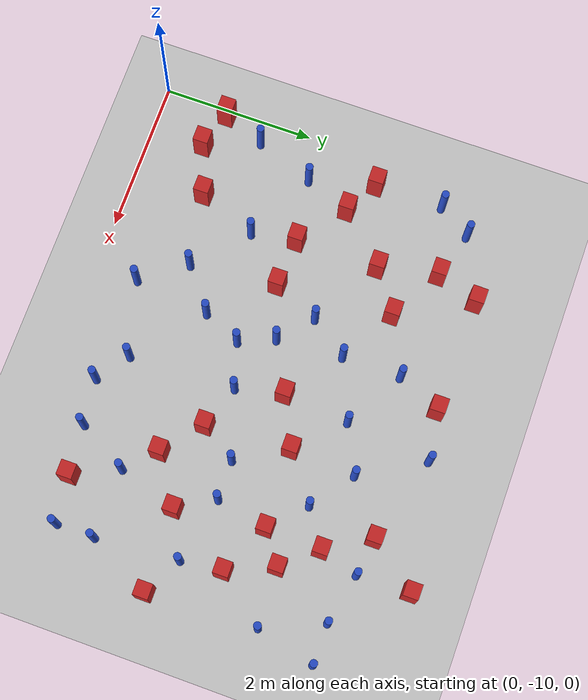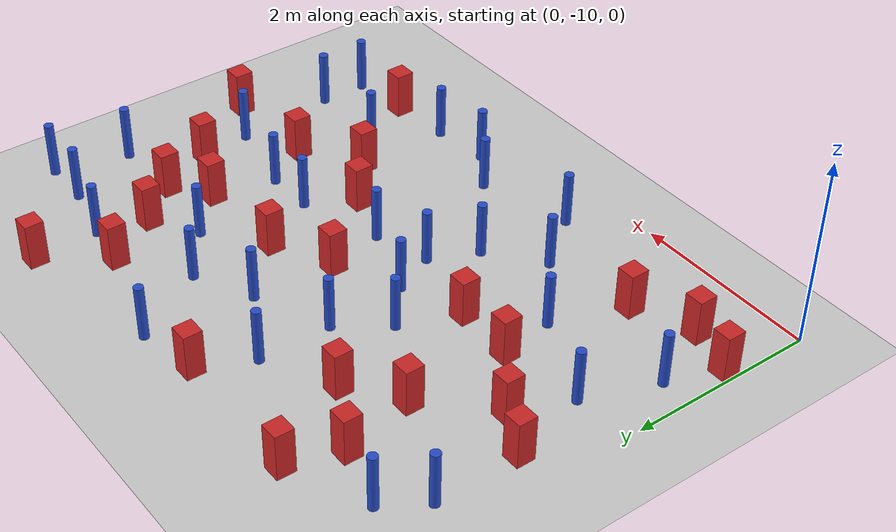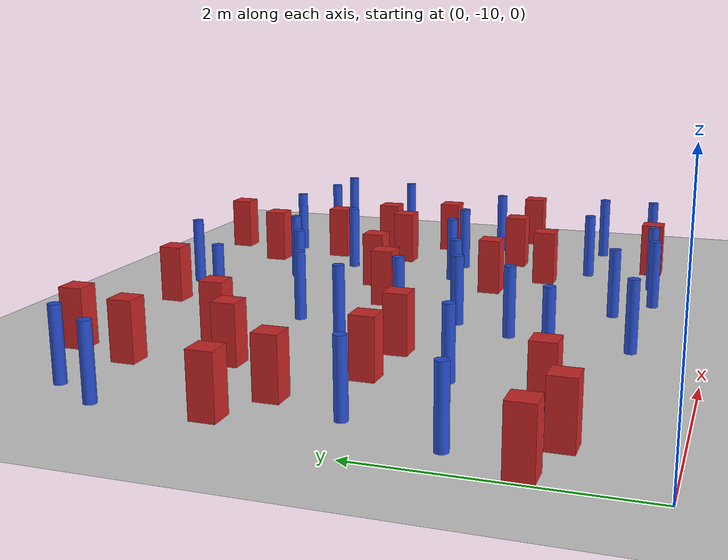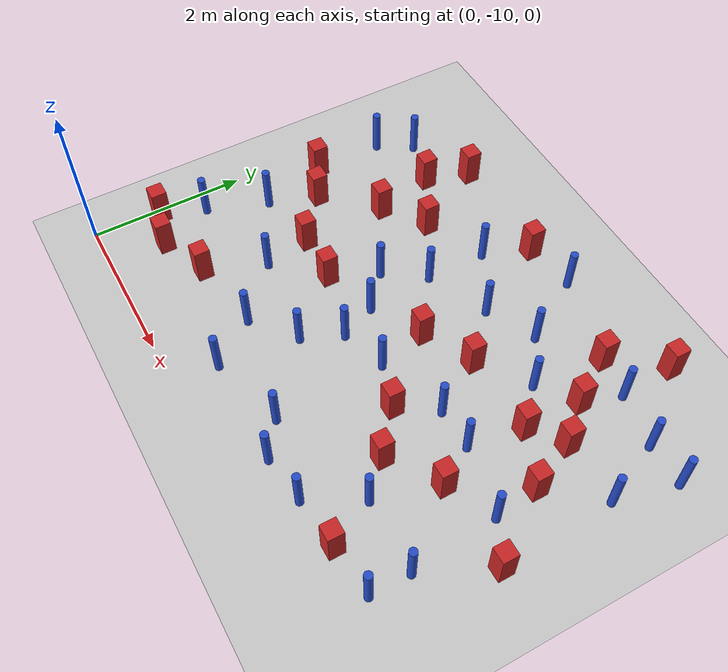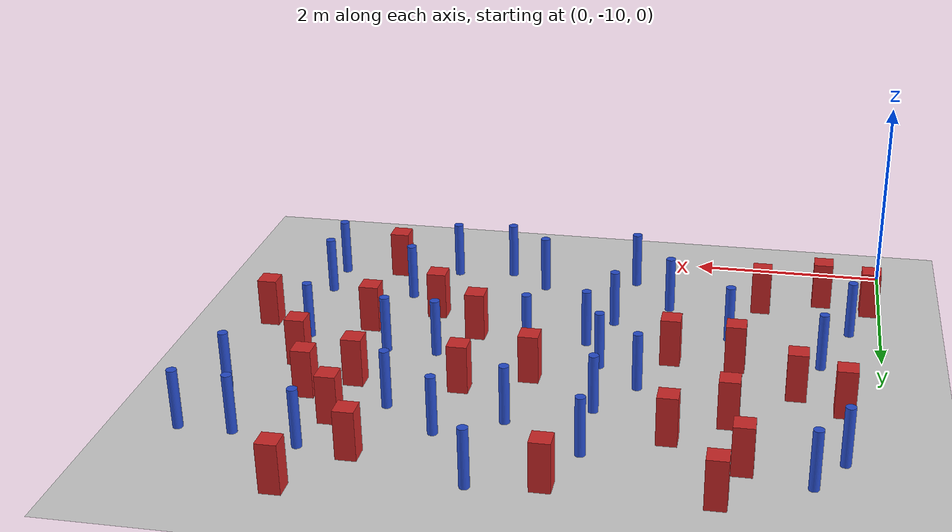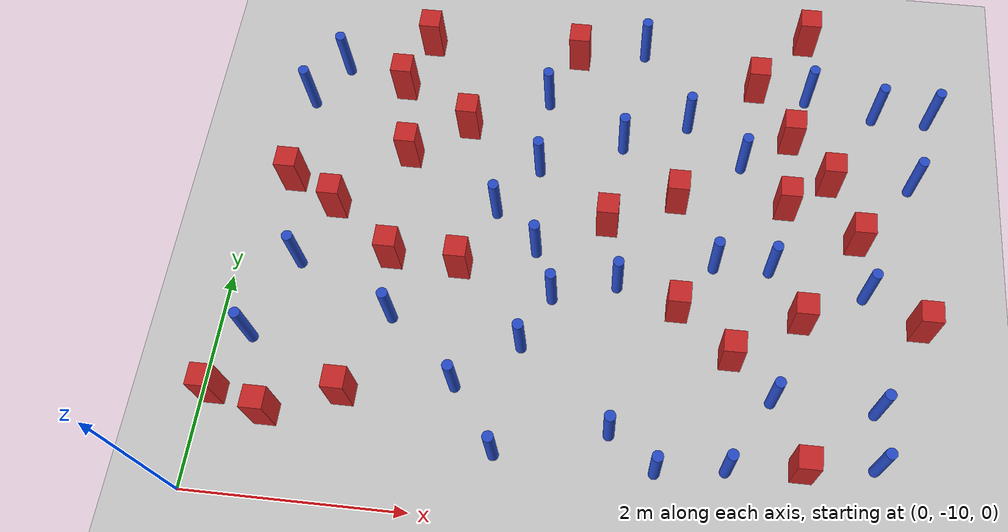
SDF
<sdf version="1.6">
 <world name="default">
  <model name="ground_plane">
   <static>1</static>
   <link name="link">
    <collision name="collision">
     <geometry><plane><normal>0 0 1</normal><size>100 100</size></plane></geometry>
     <surface><friction><ode><mu>100</mu><mu2>50</mu2></ode></friction></surface>
    </collision>
    <visual name="visual">
     <cast_shadows>0</cast_shadows>
     <geometry><plane><normal>0 0 1</normal><size>100 100</size></plane></geometry>
     <material>
      <ambient>1.0 1.0 1.0 1.0</ambient>
      <diffuse>0.8 0.8 0.8 1.0</diffuse>
      <specular>0.01 0.01 0.01 1.000000</specular>
     </material>
    </visual>
   </link>
  </model>
  <model name="pole_obstacle4">
   <static>true</static>
   <pose>5.01785423754 -8.72050945482 -3.09024884793e-07 -7.19054271912e-07 -2.1131507513e-07 -1.93935509261e-07</pose>
   <link name="link">
    <pose>0 0 0.3 0 -0 0</pose>
    <inertial>
     <mass>1</mass>
     <inertia><ixx>0.145833</ixx><ixy>0</ixy><ixz>0</ixz><iyy>0.145833</iyy><iyz>0</iyz><izz>0.125</izz></inertia>
    </inertial>
    <collision name="collision">
     <geometry><cylinder><radius>0.05</radius><length>.6</length></cylinder></geometry>
    </collision>
    <visual name="visual">
     <geometry><cylinder><radius>0.05</radius><length>.6</length></cylinder></geometry>
     <material>
      <script><name>Gazebo/Blue</name><uri>file://media/materials/scripts/gazebo.material</uri></script>
     </material>
    </visual>
   </link>
  </model>
  <model name="square_post_obstacle10">
   <static>true</static>
   <pose>3.42457370579 -7.12895520074 -4.36207812815e-07 3.75137919937e-06 9.77721102514e-07 2.47381364184e-05</pose>
   <link name="link">
    <pose>0 0 0.25 0 -0 0</pose>
    <inertial>
     <mass>100</mass>
     <inertia>
      <ixx>0.166667</ixx>
      <ixy>0</ixy>
      <ixz>0</ixz>
      <iyy>0.166667</iyy>
      <iyz>0</iyz>
      <izz>0.166667</izz>
     </inertia>
    </inertial>
    <collision name="collision"><geometry><box><size>.2 .2 .5</size></box></geometry></collision>
    <visual name="visual">
     <geometry><box><size>.2 .2 .5</size></box></geometry>
     <material>
      <script><name>Gazebo/Red</name><uri>file://media/materials/scripts/gazebo.material</uri></script>
     </material>
    </visual>
   </link>
  </model>
  <model name="square_post_obstacle11">
   <static>true</static>
   <pose>1.97547546492 -6.18665159734 -4.36207812815e-07 3.75137919937e-06 9.77721102514e-07 2.47381364184e-05</pose>
   <link name="link">
    <pose>0 0 0.25 0 -0 0</pose>
    <inertial>
     <mass>100</mass>
     <inertia>
      <ixx>0.166667</ixx>
      <ixy>0</ixy>
      <ixz>0</ixz>
      <iyy>0.166667</iyy>
      <iyz>0</iyz>
      <izz>0.166667</izz>
     </inertia>
    </inertial>
    <collision name="collision"><geometry><box><size>.2 .2 .5</size></box></geometry></collision>
    <visual name="visual">
     <geometry><box><size>.2 .2 .5</size></box></geometry>
     <material>
      <script><name>Gazebo/Red</name><uri>file://media/materials/scripts/gazebo.material</uri></script>
     </material>
    </visual>
   </link>
  </model>
  <model name="square_post_obstacle15">
   <static>true</static>
   <pose>5.29516359935 -9.3053907383 -4.36207812815e-07 3.75137919937e-06 9.77721102514e-07 2.47381364184e-05</pose>
   <link name="link">
    <pose>0 0 0.25 0 -0 0</pose>
    <inertial>
     <mass>100</mass>
     <inertia>
      <ixx>0.166667</ixx>
      <ixy>0</ixy>
      <ixz>0</ixz>
      <iyy>0.166667</iyy>
      <iyz>0</iyz>
      <izz>0.166667</izz>
     </inertia>
    </inertial>
    <collision name="collision"><geometry><box><size>.2 .2 .5</size></box></geometry></collision>
    <visual name="visual">
     <geometry><box><size>.2 .2 .5</size></box></geometry>
     <material>
      <script><name>Gazebo/Red</name><uri>file://media/materials/scripts/gazebo.material</uri></script>
     </material>
    </visual>
   </link>
  </model>
  <model name="square_post_obstacle17">
   <static>true</static>
   <pose>0.836642216668 -7.19141728706 -4.36207812815e-07 3.75137919937e-06 9.77721102514e-07 2.47381364184e-05</pose>
   <link name="link">
    <pose>0 0 0.25 0 -0 0</pose>
    <inertial>
     <mass>100</mass>
     <inertia>
      <ixx>0.166667</ixx>
      <ixy>0</ixy>
      <ixz>0</ixz>
      <iyy>0.166667</iyy>
      <iyz>0</iyz>
      <izz>0.166667</izz>
     </inertia>
    </inertial>
    <collision name="collision"><geometry><box><size>.2 .2 .5</size></box></geometry></collision>
    <visual name="visual">
     <geometry><box><size>.2 .2 .5</size></box></geometry>
     <material>
      <script><name>Gazebo/Red</name><uri>file://media/materials/scripts/gazebo.material</uri></script>
     </material>
    </visual>
   </link>
  </model>
  <model name="square_post_obstacle20">
   <static>true</static>
   <pose>1.25655331617 -9.02356234698 -4.36207812815e-07 3.75137919937e-06 9.77721102514e-07 2.47381364184e-05</pose>
   <link name="link">
    <pose>0 0 0.25 0 -0 0</pose>
    <inertial>
     <mass>100</mass>
     <inertia>
      <ixx>0.166667</ixx>
      <ixy>0</ixy>
      <ixz>0</ixz>
      <iyy>0.166667</iyy>
      <iyz>0</iyz>
      <izz>0.166667</izz>
     </inertia>
    </inertial>
    <collision name="collision"><geometry><box><size>.2 .2 .5</size></box></geometry></collision>
    <visual name="visual">
     <geometry><box><size>.2 .2 .5</size></box></geometry>
     <material>
      <script><name>Gazebo/Red</name><uri>file://media/materials/scripts/gazebo.material</uri></script>
     </material>
    </visual>
   </link>
  </model>
  <model name="pole_obstacle12">
   <static>true</static>
   <pose>4.45089515591 -7.46767784374 -3.09024884793e-07 -7.19054271911e-07 -2.1131507516e-07 -1.93935509277e-07</pose>
   <link name="link">
    <pose>0 0 0.3 0 -0 0</pose>
    <inertial>
     <mass>1</mass>
     <inertia><ixx>0.145833</ixx><ixy>0</ixy><ixz>0</ixz><iyy>0.145833</iyy><iyz>0</iyz><izz>0.125</izz></inertia>
    </inertial>
    <collision name="collision">
     <geometry><cylinder><radius>0.05</radius><length>.6</length></cylinder></geometry>
    </collision>
    <visual name="visual">
     <geometry><cylinder><radius>0.05</radius><length>.6</length></cylinder></geometry>
     <material>
      <script><name>Gazebo/Blue</name><uri>file://media/materials/scripts/gazebo.material</uri></script>
     </material>
    </visual>
   </link>
  </model>
  <model name="pole_obstacle17">
   <static>true</static>
   <pose>5.27630663382 -5.53647277275 -3.09024884793e-07 -7.19054271911e-07 -2.1131507516e-07 -1.93935509277e-07</pose>
   <link name="link">
    <pose>0 0 0.3 0 -0 0</pose>
    <inertial>
     <mass>1</mass>
     <inertia><ixx>0.145833</ixx><ixy>0</ixy><ixz>0</ixz><iyy>0.145833</iyy><iyz>0</iyz><izz>0.125</izz></inertia>
    </inertial>
    <collision name="collision">
     <geometry><cylinder><radius>0.05</radius><length>.6</length></cylinder></geometry>
    </collision>
    <visual name="visual">
     <geometry><cylinder><radius>0.05</radius><length>.6</length></cylinder></geometry>
     <material>
      <script><name>Gazebo/Blue</name><uri>file://media/materials/scripts/gazebo.material</uri></script>
     </material>
    </visual>
   </link>
  </model>
  <model name="pole_obstacle27">
   <static>true</static>
   <pose>5.92915076651 -9.23569635779 -3.09024884793e-07 -7.19054271912e-07 -2.1131507513e-07 -1.93935509261e-07</pose>
   <link name="link">
    <pose>0 0 0.3 0 -0 0</pose>
    <inertial>
     <mass>1</mass>
     <inertia><ixx>0.145833</ixx><ixy>0</ixy><ixz>0</ixz><iyy>0.145833</iyy><iyz>0</iyz><izz>0.125</izz></inertia>
    </inertial>
    <collision name="collision">
     <geometry><cylinder><radius>0.05</radius><length>.6</length></cylinder></geometry>
    </collision>
    <visual name="visual">
     <geometry><cylinder><radius>0.05</radius><length>.6</length></cylinder></geometry>
     <material>
      <script><name>Gazebo/Blue</name><uri>file://media/materials/scripts/gazebo.material</uri></script>
     </material>
    </visual>
   </link>
  </model>
  <model name="square_post_obstacle32">
   <static>true</static>
   <pose>5.09610575407 -6.78287117892 -4.36207812815e-07 3.75137919937e-06 9.77721102514e-07 2.47381364184e-05</pose>
   <link name="link">
    <pose>0 0 0.25 0 -0 0</pose>
    <inertial>
     <mass>100</mass>
     <inertia>
      <ixx>0.166667</ixx>
      <ixy>0</ixy>
      <ixz>0</ixz>
      <iyy>0.166667</iyy>
      <iyz>0</iyz>
      <izz>0.166667</izz>
     </inertia>
    </inertial>
    <collision name="collision"><geometry><box><size>.2 .2 .5</size></box></geometry></collision>
    <visual name="visual">
     <geometry><box><size>.2 .2 .5</size></box></geometry>
     <material>
      <script><name>Gazebo/Red</name><uri>file://media/materials/scripts/gazebo.material</uri></script>
     </material>
    </visual>
   </link>
  </model>
  <model name="square_post_obstacle34">
   <static>true</static>
   <pose>1.46215162454 -5.23449316191 -4.36207812815e-07 3.75137919937e-06 9.77721102514e-07 2.47381364184e-05</pose>
   <link name="link">
    <pose>0 0 0.25 0 -0 0</pose>
    <inertial>
     <mass>100</mass>
     <inertia>
      <ixx>0.166667</ixx>
      <ixy>0</ixy>
      <ixz>0</ixz>
      <iyy>0.166667</iyy>
      <iyz>0</iyz>
      <izz>0.166667</izz>
     </inertia>
    </inertial>
    <collision name="collision"><geometry><box><size>.2 .2 .5</size></box></geometry></collision>
    <visual name="visual">
     <geometry><box><size>.2 .2 .5</size></box></geometry>
     <material>
      <script><name>Gazebo/Red</name><uri>file://media/materials/scripts/gazebo.material</uri></script>
     </material>
    </visual>
   </link>
  </model>
  <model name="pole_obstacle32">
   <static>true</static>
   <pose>5.93298519884 -8.73451399179 -3.09024884793e-07 -7.19054271912e-07 -2.1131507513e-07 -1.93935509261e-07</pose>
   <link name="link">
    <pose>0 0 0.3 0 -0 0</pose>
    <inertial>
     <mass>1</mass>
     <inertia><ixx>0.145833</ixx><ixy>0</ixy><ixz>0</ixz><iyy>0.145833</iyy><iyz>0</iyz><izz>0.125</izz></inertia>
    </inertial>
    <collision name="collision">
     <geometry><cylinder><radius>0.05</radius><length>.6</length></cylinder></geometry>
    </collision>
    <visual name="visual">
     <geometry><cylinder><radius>0.05</radius><length>.6</length></cylinder></geometry>
     <material>
      <script><name>Gazebo/Blue</name><uri>file://media/materials/scripts/gazebo.material</uri></script>
     </material>
    </visual>
   </link>
  </model>
  <model name="pole_obstacle41">
   <static>true</static>
   <pose>4.96928297013 -7.45703240498 -3.09024884793e-07 -7.19054271911e-07 -2.1131507516e-07 -1.93935509277e-07</pose>
   <link name="link">
    <pose>0 0 0.3 0 -0 0</pose>
    <inertial>
     <mass>1</mass>
     <inertia><ixx>0.145833</ixx><ixy>0</ixy><ixz>0</ixz><iyy>0.145833</iyy><iyz>0</iyz><izz>0.125</izz></inertia>
    </inertial>
    <collision name="collision">
     <geometry><cylinder><radius>0.05</radius><length>.6</length></cylinder></geometry>
    </collision>
    <visual name="visual">
     <geometry><cylinder><radius>0.05</radius><length>.6</length></cylinder></geometry>
     <material>
      <script><name>Gazebo/Blue</name><uri>file://media/materials/scripts/gazebo.material</uri></script>
     </material>
    </visual>
   </link>
  </model>
  <model name="pole_obstacle44">
   <static>true</static>
   <pose>0.605378490308 -7.80299524421 -3.09024884793e-07 -7.19054271912e-07 -2.11315075129e-07 -1.93935509261e-07</pose>
   <link name="link">
    <pose>0 0 0.3 0 -0 0</pose>
    <inertial>
     <mass>1</mass>
     <inertia><ixx>0.145833</ixx><ixy>0</ixy><ixz>0</ixz><iyy>0.145833</iyy><iyz>0</iyz><izz>0.125</izz></inertia>
    </inertial>
    <collision name="collision">
     <geometry><cylinder><radius>0.05</radius><length>.6</length></cylinder></geometry>
    </collision>
    <visual name="visual">
     <geometry><cylinder><radius>0.05</radius><length>.6</length></cylinder></geometry>
     <material>
      <script><name>Gazebo/Blue</name><uri>file://media/materials/scripts/gazebo.material</uri></script>
     </material>
    </visual>
   </link>
  </model>
  <model name="square_post_obstacle43">
   <static>true</static>
   <pose>5.11999814924 -6.04693114205 -4.36207812815e-07 3.75137919937e-06 9.77721102514e-07 2.47381364184e-05</pose>
   <link name="link">
    <pose>0 0 0.25 0 -0 0</pose>
    <inertial>
     <mass>100</mass>
     <inertia>
      <ixx>0.166667</ixx>
      <ixy>0</ixy>
      <ixz>0</ixz>
      <iyy>0.166667</iyy>
      <iyz>0</iyz>
      <izz>0.166667</izz>
     </inertia>
    </inertial>
    <collision name="collision"><geometry><box><size>.2 .2 .5</size></box></geometry></collision>
    <visual name="visual">
     <geometry><box><size>.2 .2 .5</size></box></geometry>
     <material>
      <script><name>Gazebo/Red</name><uri>file://media/materials/scripts/gazebo.material</uri></script>
     </material>
    </visual>
   </link>
  </model>
  <model name="square_post_obstacle55">
   <static>true</static>
   <pose>0.114813688964 -9.12235032195 -4.36207812815e-07 3.75137919937e-06 9.77721102514e-07 2.47381364184e-05</pose>
   <link name="link">
    <pose>0 0 0.25 0 -0 0</pose>
    <inertial>
     <mass>100</mass>
     <inertia>
      <ixx>0.166667</ixx>
      <ixy>0</ixy>
      <ixz>0</ixz>
      <iyy>0.166667</iyy>
      <iyz>0</iyz>
      <izz>0.166667</izz>
     </inertia>
    </inertial>
    <collision name="collision"><geometry><box><size>.2 .2 .5</size></box></geometry></collision>
    <visual name="visual">
     <geometry><box><size>.2 .2 .5</size></box></geometry>
     <material>
      <script><name>Gazebo/Red</name><uri>file://media/materials/scripts/gazebo.material</uri></script>
     </material>
    </visual>
   </link>
  </model>
  <model name="square_post_obstacle65">
   <static>true</static>
   <pose>2.97142515499 -5.25518997697 -4.36207812815e-07 3.75137919937e-06 9.77721102514e-07 2.47381364184e-05</pose>
   <link name="link">
    <pose>0 0 0.25 0 -0 0</pose>
    <inertial>
     <mass>100</mass>
     <inertia>
      <ixx>0.166667</ixx>
      <ixy>0</ixy>
      <ixz>0</ixz>
      <iyy>0.166667</iyy>
      <iyz>0</iyz>
      <izz>0.166667</izz>
     </inertia>
    </inertial>
    <collision name="collision"><geometry><box><size>.2 .2 .5</size></box></geometry></collision>
    <visual name="visual">
     <geometry><box><size>.2 .2 .5</size></box></geometry>
     <material>
      <script><name>Gazebo/Red</name><uri>file://media/materials/scripts/gazebo.material</uri></script>
     </material>
    </visual>
   </link>
  </model>
  <model name="square_post_obstacle66">
   <static>true</static>
   <pose>1.27184944069 -5.79322923399 -4.36207812815e-07 3.75137919937e-06 9.77721102514e-07 2.47381364184e-05</pose>
   <link name="link">
    <pose>0 0 0.25 0 -0 0</pose>
    <inertial>
     <mass>100</mass>
     <inertia>
      <ixx>0.166667</ixx>
      <ixy>0</ixy>
      <ixz>0</ixz>
      <iyy>0.166667</iyy>
      <iyz>0</iyz>
      <izz>0.166667</izz>
     </inertia>
    </inertial>
    <collision name="collision"><geometry><box><size>.2 .2 .5</size></box></geometry></collision>
    <visual name="visual">
     <geometry><box><size>.2 .2 .5</size></box></geometry>
     <material>
      <script><name>Gazebo/Red</name><uri>file://media/materials/scripts/gazebo.material</uri></script>
     </material>
    </visual>
   </link>
  </model>
  <model name="pole_obstacle65">
   <static>true</static>
   <pose>2.78615547241 -7.47145394269 -3.09024884793e-07 -7.19054271912e-07 -2.11315075134e-07 -1.93935509266e-07</pose>
   <link name="link">
    <pose>0 0 0.3 0 -0 0</pose>
    <inertial>
     <mass>1</mass>
     <inertia><ixx>0.145833</ixx><ixy>0</ixy><ixz>0</ixz><iyy>0.145833</iyy><iyz>0</iyz><izz>0.125</izz></inertia>
    </inertial>
    <collision name="collision">
     <geometry><cylinder><radius>0.05</radius><length>.6</length></cylinder></geometry>
    </collision>
    <visual name="visual">
     <geometry><cylinder><radius>0.05</radius><length>.6</length></cylinder></geometry>
     <material>
      <script><name>Gazebo/Blue</name><uri>file://media/materials/scripts/gazebo.material</uri></script>
     </material>
    </visual>
   </link>
  </model>
  <model name="square_post_obstacle71">
   <static>true</static>
   <pose>2.09841490123 -7.70209737423 -4.36207812815e-07 3.75137919937e-06 9.77721102514e-07 2.47381364184e-05</pose>
   <link name="link">
    <pose>0 0 0.25 0 -0 0</pose>
    <inertial>
     <mass>100</mass>
     <inertia>
      <ixx>0.166667</ixx>
      <ixy>0</ixy>
      <ixz>0</ixz>
      <iyy>0.166667</iyy>
      <iyz>0</iyz>
      <izz>0.166667</izz>
     </inertia>
    </inertial>
    <collision name="collision"><geometry><box><size>.2 .2 .5</size></box></geometry></collision>
    <visual name="visual">
     <geometry><box><size>.2 .2 .5</size></box></geometry>
     <material>
      <script><name>Gazebo/Red</name><uri>file://media/materials/scripts/gazebo.material</uri></script>
     </material>
    </visual>
   </link>
  </model>
  <model name="pole_obstacle70">
   <static>true</static>
   <pose>6.4743793026 -5.68180323685 -3.09024884793e-07 -7.19054271911e-07 -2.1131507516e-07 -1.93935509277e-07</pose>
   <link name="link">
    <pose>0 0 0.3 0 -0 0</pose>
    <inertial>
     <mass>1</mass>
     <inertia><ixx>0.145833</ixx><ixy>0</ixy><ixz>0</ixz><iyy>0.145833</iyy><iyz>0</iyz><izz>0.125</izz></inertia>
    </inertial>
    <collision name="collision">
     <geometry><cylinder><radius>0.05</radius><length>.6</length></cylinder></geometry>
    </collision>
    <visual name="visual">
     <geometry><cylinder><radius>0.05</radius><length>.6</length></cylinder></geometry>
     <material>
      <script><name>Gazebo/Blue</name><uri>file://media/materials/scripts/gazebo.material</uri></script>
     </material>
    </visual>
   </link>
  </model>
  <model name="pole_obstacle71">
   <static>true</static>
   <pose>3.62967392677 -5.14205303687 -3.09024884793e-07 -7.19054271912e-07 -2.11315075134e-07 -1.93935509266e-07</pose>
   <link name="link">
    <pose>0 0 0.3 0 -0 0</pose>
    <inertial>
     <mass>1</mass>
     <inertia><ixx>0.145833</ixx><ixy>0</ixy><ixz>0</ixz><iyy>0.145833</iyy><iyz>0</iyz><izz>0.125</izz></inertia>
    </inertial>
    <collision name="collision">
     <geometry><cylinder><radius>0.05</radius><length>.6</length></cylinder></geometry>
    </collision>
    <visual name="visual">
     <geometry><cylinder><radius>0.05</radius><length>.6</length></cylinder></geometry>
     <material>
      <script><name>Gazebo/Blue</name><uri>file://media/materials/scripts/gazebo.material</uri></script>
     </material>
    </visual>
   </link>
  </model>
  <model name="pole_obstacle85">
   <static>true</static>
   <pose>2.72221919034 -5.82323684712 -3.09024884793e-07 -7.19054271912e-07 -2.11315075134e-07 -1.93935509266e-07</pose>
   <link name="link">
    <pose>0 0 0.3 0 -0 0</pose>
    <inertial>
     <mass>1</mass>
     <inertia><ixx>0.145833</ixx><ixy>0</ixy><ixz>0</ixz><iyy>0.145833</iyy><iyz>0</iyz><izz>0.125</izz></inertia>
    </inertial>
    <collision name="collision">
     <geometry><cylinder><radius>0.05</radius><length>.6</length></cylinder></geometry>
    </collision>
    <visual name="visual">
     <geometry><cylinder><radius>0.05</radius><length>.6</length></cylinder></geometry>
     <material>
      <script><name>Gazebo/Blue</name><uri>file://media/materials/scripts/gazebo.material</uri></script>
     </material>
    </visual>
   </link>
  </model>
  <model name="pole_obstacle87">
   <static>true</static>
   <pose>3.50118330531 -6.26173031369 -3.09024884793e-07 -7.19054271912e-07 -2.11315075134e-07 -1.93935509266e-07</pose>
   <link name="link">
    <pose>0 0 0.3 0 -0 0</pose>
    <inertial>
     <mass>1</mass>
     <inertia><ixx>0.145833</ixx><ixy>0</ixy><ixz>0</ixz><iyy>0.145833</iyy><iyz>0</iyz><izz>0.125</izz></inertia>
    </inertial>
    <collision name="collision">
     <geometry><cylinder><radius>0.05</radius><length>.6</length></cylinder></geometry>
    </collision>
    <visual name="visual">
     <geometry><cylinder><radius>0.05</radius><length>.6</length></cylinder></geometry>
     <material>
      <script><name>Gazebo/Blue</name><uri>file://media/materials/scripts/gazebo.material</uri></script>
     </material>
    </visual>
   </link>
  </model>
  <model name="pole_obstacle97">
   <static>true</static>
   <pose>0.370575836053 -6.04234179367 -3.09024884793e-07 -7.19054271912e-07 -2.1131507513e-07 -1.93935509262e-07</pose>
   <link name="link">
    <pose>0 0 0.3 0 -0 0</pose>
    <inertial>
     <mass>1</mass>
     <inertia><ixx>0.145833</ixx><ixy>0</ixy><ixz>0</ixz><iyy>0.145833</iyy><iyz>0</iyz><izz>0.125</izz></inertia>
    </inertial>
    <collision name="collision">
     <geometry><cylinder><radius>0.05</radius><length>.6</length></cylinder></geometry>
    </collision>
    <visual name="visual">
     <geometry><cylinder><radius>0.05</radius><length>.6</length></cylinder></geometry>
     <material>
      <script><name>Gazebo/Blue</name><uri>file://media/materials/scripts/gazebo.material</uri></script>
     </material>
    </visual>
   </link>
  </model>
  <model name="pole_obstacle106">
   <static>true</static>
   <pose>2.76178451699 -8.42981464068 -3.09024884848e-07 -7.19054271902e-07 -2.11315075199e-07 -1.93935509286e-07</pose>
   <link name="link">
    <pose>0 0 0.3 0 -0 0</pose>
    <inertial>
     <mass>1</mass>
     <inertia><ixx>0.145833</ixx><ixy>0</ixy><ixz>0</ixz><iyy>0.145833</iyy><iyz>0</iyz><izz>0.125</izz></inertia>
    </inertial>
    <collision name="collision">
     <geometry><cylinder><radius>0.05</radius><length>.6</length></cylinder></geometry>
    </collision>
    <visual name="visual">
     <geometry><cylinder><radius>0.05</radius><length>.6</length></cylinder></geometry>
     <material>
      <script><name>Gazebo/Blue</name><uri>file://media/materials/scripts/gazebo.material</uri></script>
     </material>
    </visual>
   </link>
  </model>
  <model name="square_post_obstacle110">
   <static>true</static>
   <pose>5.25754449589 -7.93784602561 -4.36207812815e-07 3.75137919937e-06 9.77721102514e-07 2.47381364184e-05</pose>
   <link name="link">
    <pose>0 0 0.25 0 -0 0</pose>
    <inertial>
     <mass>100</mass>
     <inertia>
      <ixx>0.166667</ixx>
      <ixy>0</ixy>
      <ixz>0</ixz>
      <iyy>0.166667</iyy>
      <iyz>0</iyz>
      <izz>0.166667</izz>
     </inertia>
    </inertial>
    <collision name="collision"><geometry><box><size>.2 .2 .5</size></box></geometry></collision>
    <visual name="visual">
     <geometry><box><size>.2 .2 .5</size></box></geometry>
     <material>
      <script><name>Gazebo/Red</name><uri>file://media/materials/scripts/gazebo.material</uri></script>
     </material>
    </visual>
   </link>
  </model>
  <model name="pole_obstacle124">
   <static>true</static>
   <pose>4.11734787422 -5.95949011929 -3.09024884793e-07 -7.19054271911e-07 -2.1131507516e-07 -1.93935509277e-07</pose>
   <link name="link">
    <pose>0 0 0.3 0 -0 0</pose>
    <inertial>
     <mass>1</mass>
     <inertia><ixx>0.145833</ixx><ixy>0</ixy><ixz>0</ixz><iyy>0.145833</iyy><iyz>0</iyz><izz>0.125</izz></inertia>
    </inertial>
    <collision name="collision">
     <geometry><cylinder><radius>0.05</radius><length>.6</length></cylinder></geometry>
    </collision>
    <visual name="visual">
     <geometry><cylinder><radius>0.05</radius><length>.6</length></cylinder></geometry>
     <material>
      <script><name>Gazebo/Blue</name><uri>file://media/materials/scripts/gazebo.material</uri></script>
     </material>
    </visual>
   </link>
  </model>
  <model name="pole_obstacle127">
   <static>true</static>
   <pose>4.04201682928 -9.4518366179 -3.09024884793e-07 -7.19054271912e-07 -2.11315075133e-07 -1.93935509264e-07</pose>
   <link name="link">
    <pose>0 0 0.3 0 -0 0</pose>
    <inertial>
     <mass>1</mass>
     <inertia><ixx>0.145833</ixx><ixy>0</ixy><ixz>0</ixz><iyy>0.145833</iyy><iyz>0</iyz><izz>0.125</izz></inertia>
    </inertial>
    <collision name="collision">
     <geometry><cylinder><radius>0.05</radius><length>.6</length></cylinder></geometry>
    </collision>
    <visual name="visual">
     <geometry><cylinder><radius>0.05</radius><length>.6</length></cylinder></geometry>
     <material>
      <script><name>Gazebo/Blue</name><uri>file://media/materials/scripts/gazebo.material</uri></script>
     </material>
    </visual>
   </link>
  </model>
  <model name="square_post_obstacle114">
   <static>true</static>
   <pose>0.615794236961 -9.26849853344 -4.36207812815e-07 3.75137919937e-06 9.77721102514e-07 2.47381364184e-05</pose>
   <link name="link">
    <pose>0 0 0.25 0 -0 0</pose>
    <inertial>
     <mass>100</mass>
     <inertia>
      <ixx>0.166667</ixx>
      <ixy>0</ixy>
      <ixz>0</ixz>
      <iyy>0.166667</iyy>
      <iyz>0</iyz>
      <izz>0.166667</izz>
     </inertia>
    </inertial>
    <collision name="collision"><geometry><box><size>.2 .2 .5</size></box></geometry></collision>
    <visual name="visual">
     <geometry><box><size>.2 .2 .5</size></box></geometry>
     <material>
      <script><name>Gazebo/Red</name><uri>file://media/materials/scripts/gazebo.material</uri></script>
     </material>
    </visual>
   </link>
  </model>
  <model name="square_post_obstacle119">
   <static>true</static>
   <pose>4.64056442495 -8.35313244497 -4.36207812815e-07 3.75137919937e-06 9.77721102514e-07 2.47381364184e-05</pose>
   <link name="link">
    <pose>0 0 0.25 0 -0 0</pose>
    <inertial>
     <mass>100</mass>
     <inertia>
      <ixx>0.166667</ixx>
      <ixy>0</ixy>
      <ixz>0</ixz>
      <iyy>0.166667</iyy>
      <iyz>0</iyz>
      <izz>0.166667</izz>
     </inertia>
    </inertial>
    <collision name="collision"><geometry><box><size>.2 .2 .5</size></box></geometry></collision>
    <visual name="visual">
     <geometry><box><size>.2 .2 .5</size></box></geometry>
     <material>
      <script><name>Gazebo/Red</name><uri>file://media/materials/scripts/gazebo.material</uri></script>
     </material>
    </visual>
   </link>
  </model>
  <model name="pole_obstacle139">
   <static>true</static>
   <pose>5.84026271963 -7.63885546254 -3.09024884793e-07 -7.19054271911e-07 -2.1131507516e-07 -1.93935509277e-07</pose>
   <link name="link">
    <pose>0 0 0.3 0 -0 0</pose>
    <inertial>
     <mass>1</mass>
     <inertia><ixx>0.145833</ixx><ixy>0</ixy><ixz>0</ixz><iyy>0.145833</iyy><iyz>0</iyz><izz>0.125</izz></inertia>
    </inertial>
    <collision name="collision">
     <geometry><cylinder><radius>0.05</radius><length>.6</length></cylinder></geometry>
    </collision>
    <visual name="visual">
     <geometry><cylinder><radius>0.05</radius><length>.6</length></cylinder></geometry>
     <material>
      <script><name>Gazebo/Blue</name><uri>file://media/materials/scripts/gazebo.material</uri></script>
     </material>
    </visual>
   </link>
  </model>
  <model name="square_post_obstacle128">
   <static>true</static>
   <pose>1.45169533826 -7.66780973467 -4.36207812815e-07 3.75137919937e-06 9.77721102514e-07 2.47381364184e-05</pose>
   <link name="link">
    <pose>0 0 0.25 0 -0 0</pose>
    <inertial>
     <mass>100</mass>
     <inertia>
      <ixx>0.166667</ixx>
      <ixy>0</ixy>
      <ixz>0</ixz>
      <iyy>0.166667</iyy>
      <iyz>0</iyz>
      <izz>0.166667</izz>
     </inertia>
    </inertial>
    <collision name="collision"><geometry><box><size>.2 .2 .5</size></box></geometry></collision>
    <visual name="visual">
     <geometry><box><size>.2 .2 .5</size></box></geometry>
     <material>
      <script><name>Gazebo/Red</name><uri>file://media/materials/scripts/gazebo.material</uri></script>
     </material>
    </visual>
   </link>
  </model>
  <model name="square_post_obstacle140">
   <static>true</static>
   <pose>6.34151171416 -7.9029564576 -4.36207812815e-07 3.75137919937e-06 9.77721102514e-07 2.47381364184e-05</pose>
   <link name="link">
    <pose>0 0 0.25 0 -0 0</pose>
    <inertial>
     <mass>100</mass>
     <inertia>
      <ixx>0.166667</ixx>
      <ixy>0</ixy>
      <ixz>0</ixz>
      <iyy>0.166667</iyy>
      <iyz>0</iyz>
      <izz>0.166667</izz>
     </inertia>
    </inertial>
    <collision name="collision"><geometry><box><size>.2 .2 .5</size></box></geometry></collision>
    <visual name="visual">
     <geometry><box><size>.2 .2 .5</size></box></geometry>
     <material>
      <script><name>Gazebo/Red</name><uri>file://media/materials/scripts/gazebo.material</uri></script>
     </material>
    </visual>
   </link>
  </model>
  <model name="square_post_obstacle148">
   <static>true</static>
   <pose>0.377792685001 -6.94698851833 -4.36207812815e-07 3.75137919937e-06 9.77721102514e-07 2.47381364184e-05</pose>
   <link name="link">
    <pose>0 0 0.25 0 -0 0</pose>
    <inertial>
     <mass>100</mass>
     <inertia>
      <ixx>0.166667</ixx>
      <ixy>0</ixy>
      <ixz>0</ixz>
      <iyy>0.166667</iyy>
      <iyz>0</iyz>
      <izz>0.166667</izz>
     </inertia>
    </inertial>
    <collision name="collision"><geometry><box><size>.2 .2 .5</size></box></geometry></collision>
    <visual name="visual">
     <geometry><box><size>.2 .2 .5</size></box></geometry>
     <material>
      <script><name>Gazebo/Red</name><uri>file://media/materials/scripts/gazebo.material</uri></script>
     </material>
    </visual>
   </link>
  </model>
  <model name="pole_obstacle159">
   <static>true</static>
   <pose>5.94506034074 -5.67752812015 -3.09024884793e-07 -7.19054271911e-07 -2.1131507516e-07 -1.93935509277e-07</pose>
   <link name="link">
    <pose>0 0 0.3 0 -0 0</pose>
    <inertial>
     <mass>1</mass>
     <inertia><ixx>0.145833</ixx><ixy>0</ixy><ixz>0</ixz><iyy>0.145833</iyy><iyz>0</iyz><izz>0.125</izz></inertia>
    </inertial>
    <collision name="collision">
     <geometry><cylinder><radius>0.05</radius><length>.6</length></cylinder></geometry>
    </collision>
    <visual name="visual">
     <geometry><cylinder><radius>0.05</radius><length>.6</length></cylinder></geometry>
     <material>
      <script><name>Gazebo/Blue</name><uri>file://media/materials/scripts/gazebo.material</uri></script>
     </material>
    </visual>
   </link>
  </model>
  <model name="pole_obstacle168">
   <static>true</static>
   <pose>3.57239746306 -7.75249903521 -3.09024884793e-07 -7.19054271912e-07 -2.11315075134e-07 -1.93935509266e-07</pose>
   <link name="link">
    <pose>0 0 0.3 0 -0 0</pose>
    <inertial>
     <mass>1</mass>
     <inertia><ixx>0.145833</ixx><ixy>0</ixy><ixz>0</ixz><iyy>0.145833</iyy><iyz>0</iyz><izz>0.125</izz></inertia>
    </inertial>
    <collision name="collision">
     <geometry><cylinder><radius>0.05</radius><length>.6</length></cylinder></geometry>
    </collision>
    <visual name="visual">
     <geometry><cylinder><radius>0.05</radius><length>.6</length></cylinder></geometry>
     <material>
      <script><name>Gazebo/Blue</name><uri>file://media/materials/scripts/gazebo.material</uri></script>
     </material>
    </visual>
   </link>
  </model>
  <model name="square_post_obstacle162">
   <static>true</static>
   <pose>4.06033916985 -6.81670431272 -4.36207812815e-07 3.75137919937e-06 9.77721102514e-07 2.47381364184e-05</pose>
   <link name="link">
    <pose>0 0 0.25 0 -0 0</pose>
    <inertial>
     <mass>100</mass>
     <inertia>
      <ixx>0.166667</ixx>
      <ixy>0</ixy>
      <ixz>0</ixz>
      <iyy>0.166667</iyy>
      <iyz>0</iyz>
      <izz>0.166667</izz>
     </inertia>
    </inertial>
    <collision name="collision"><geometry><box><size>.2 .2 .5</size></box></geometry></collision>
    <visual name="visual">
     <geometry><box><size>.2 .2 .5</size></box></geometry>
     <material>
      <script><name>Gazebo/Red</name><uri>file://media/materials/scripts/gazebo.material</uri></script>
     </material>
    </visual>
   </link>
  </model>
  <model name="square_post_obstacle165">
   <static>true</static>
   <pose>4.13784029694 -7.93737396552 -4.36207812815e-07 3.75137919937e-06 9.77721102514e-07 2.47381364184e-05</pose>
   <link name="link">
    <pose>0 0 0.25 0 -0 0</pose>
    <inertial>
     <mass>100</mass>
     <inertia>
      <ixx>0.166667</ixx>
      <ixy>0</ixy>
      <ixz>0</ixz>
      <iyy>0.166667</iyy>
      <iyz>0</iyz>
      <izz>0.166667</izz>
     </inertia>
    </inertial>
    <collision name="collision"><geometry><box><size>.2 .2 .5</size></box></geometry></collision>
    <visual name="visual">
     <geometry><box><size>.2 .2 .5</size></box></geometry>
     <material>
      <script><name>Gazebo/Red</name><uri>file://media/materials/scripts/gazebo.material</uri></script>
     </material>
    </visual>
   </link>
  </model>
  <model name="pole_obstacle181">
   <static>true</static>
   <pose>2.71816057544 -6.601269992 -3.09024884793e-07 -7.19054271912e-07 -2.11315075134e-07 -1.93935509266e-07</pose>
   <link name="link">
    <pose>0 0 0.3 0 -0 0</pose>
    <inertial>
     <mass>1</mass>
     <inertia><ixx>0.145833</ixx><ixy>0</ixy><ixz>0</ixz><iyy>0.145833</iyy><iyz>0</iyz><izz>0.125</izz></inertia>
    </inertial>
    <collision name="collision">
     <geometry><cylinder><radius>0.05</radius><length>.6</length></cylinder></geometry>
    </collision>
    <visual name="visual">
     <geometry><cylinder><radius>0.05</radius><length>.6</length></cylinder></geometry>
     <material>
      <script><name>Gazebo/Blue</name><uri>file://media/materials/scripts/gazebo.material</uri></script>
     </material>
    </visual>
   </link>
  </model>
  <model name="square_post_obstacle172">
   <static>true</static>
   <pose>5.77000380188 -7.09073915551 -4.36207812815e-07 3.75137919937e-06 9.77721102514e-07 2.47381364184e-05</pose>
   <link name="link">
    <pose>0 0 0.25 0 -0 0</pose>
    <inertial>
     <mass>100</mass>
     <inertia>
      <ixx>0.166667</ixx>
      <ixy>0</ixy>
      <ixz>0</ixz>
      <iyy>0.166667</iyy>
      <iyz>0</iyz>
      <izz>0.166667</izz>
     </inertia>
    </inertial>
    <collision name="collision"><geometry><box><size>.2 .2 .5</size></box></geometry></collision>
    <visual name="visual">
     <geometry><box><size>.2 .2 .5</size></box></geometry>
     <material>
      <script><name>Gazebo/Red</name><uri>file://media/materials/scripts/gazebo.material</uri></script>
     </material>
    </visual>
   </link>
  </model>
  <model name="square_post_obstacle176">
   <static>true</static>
   <pose>1.44552547935 -6.56884128339 -4.36207812815e-07 3.75137919937e-06 9.77721102514e-07 2.47381364184e-05</pose>
   <link name="link">
    <pose>0 0 0.25 0 -0 0</pose>
    <inertial>
     <mass>100</mass>
     <inertia>
      <ixx>0.166667</ixx>
      <ixy>0</ixy>
      <ixz>0</ixz>
      <iyy>0.166667</iyy>
      <iyz>0</iyz>
      <izz>0.166667</izz>
     </inertia>
    </inertial>
    <collision name="collision"><geometry><box><size>.2 .2 .5</size></box></geometry></collision>
    <visual name="visual">
     <geometry><box><size>.2 .2 .5</size></box></geometry>
     <material>
      <script><name>Gazebo/Red</name><uri>file://media/materials/scripts/gazebo.material</uri></script>
     </material>
    </visual>
   </link>
  </model>
  <model name="square_post_obstacle180">
   <static>true</static>
   <pose>4.76778169639 -5.47267111461 -4.36207812815e-07 3.75137919937e-06 9.77721102514e-07 2.47381364184e-05</pose>
   <link name="link">
    <pose>0 0 0.25 0 -0 0</pose>
    <inertial>
     <mass>100</mass>
     <inertia>
      <ixx>0.166667</ixx>
      <ixy>0</ixy>
      <ixz>0</ixz>
      <iyy>0.166667</iyy>
      <iyz>0</iyz>
      <izz>0.166667</izz>
     </inertia>
    </inertial>
    <collision name="collision"><geometry><box><size>.2 .2 .5</size></box></geometry></collision>
    <visual name="visual">
     <geometry><box><size>.2 .2 .5</size></box></geometry>
     <material>
      <script><name>Gazebo/Red</name><uri>file://media/materials/scripts/gazebo.material</uri></script>
     </material>
    </visual>
   </link>
  </model>
  <model name="square_post_obstacle188">
   <static>true</static>
   <pose>5.25167372895 -4.84595173867 -4.36207812815e-07 3.75137919937e-06 9.77721102514e-07 2.47381364184e-05</pose>
   <link name="link">
    <pose>0 0 0.25 0 -0 0</pose>
    <inertial>
     <mass>100</mass>
     <inertia>
      <ixx>0.166667</ixx>
      <ixy>0</ixy>
      <ixz>0</ixz>
      <iyy>0.166667</iyy>
      <iyz>0</iyz>
      <izz>0.166667</izz>
     </inertia>
    </inertial>
    <collision name="collision"><geometry><box><size>.2 .2 .5</size></box></geometry></collision>
    <visual name="visual">
     <geometry><box><size>.2 .2 .5</size></box></geometry>
     <material>
      <script><name>Gazebo/Red</name><uri>file://media/materials/scripts/gazebo.material</uri></script>
     </material>
    </visual>
   </link>
  </model>
  <model name="square_post_obstacle191">
   <static>true</static>
   <pose>5.50008999418 -6.48433006962 -4.36207812815e-07 3.75137919937e-06 9.77721102514e-07 2.47381364184e-05</pose>
   <link name="link">
    <pose>0 0 0.25 0 -0 0</pose>
    <inertial>
     <mass>100</mass>
     <inertia>
      <ixx>0.166667</ixx>
      <ixy>0</ixy>
      <ixz>0</ixz>
      <iyy>0.166667</iyy>
      <iyz>0</iyz>
      <izz>0.166667</izz>
     </inertia>
    </inertial>
    <collision name="collision"><geometry><box><size>.2 .2 .5</size></box></geometry></collision>
    <visual name="visual">
     <geometry><box><size>.2 .2 .5</size></box></geometry>
     <material>
      <script><name>Gazebo/Red</name><uri>file://media/materials/scripts/gazebo.material</uri></script>
     </material>
    </visual>
   </link>
  </model>
  <model name="pole_obstacle194">
   <static>true</static>
   <pose>6.28565863993 -6.45564617101 -3.09024884793e-07 -7.19054271911e-07 -2.1131507516e-07 -1.93935509277e-07</pose>
   <link name="link">
    <pose>0 0 0.3 0 -0 0</pose>
    <inertial>
     <mass>1</mass>
     <inertia><ixx>0.145833</ixx><ixy>0</ixy><ixz>0</ixz><iyy>0.145833</iyy><iyz>0</iyz><izz>0.125</izz></inertia>
    </inertial>
    <collision name="collision">
     <geometry><cylinder><radius>0.05</radius><length>.6</length></cylinder></geometry>
    </collision>
    <visual name="visual">
     <geometry><cylinder><radius>0.05</radius><length>.6</length></cylinder></geometry>
     <material>
      <script><name>Gazebo/Blue</name><uri>file://media/materials/scripts/gazebo.material</uri></script>
     </material>
    </visual>
   </link>
  </model>
  <model name="pole_obstacle203">
   <static>true</static>
   <pose>0.320352504352 -8.57476057441 -3.09024884793e-07 -7.19054271911e-07 -2.11315075166e-07 -1.93935509282e-07</pose>
   <link name="link">
    <pose>0 0 0.3 0 -0 0</pose>
    <inertial>
     <mass>1</mass>
     <inertia><ixx>0.145833</ixx><ixy>0</ixy><ixz>0</ixz><iyy>0.145833</iyy><iyz>0</iyz><izz>0.125</izz></inertia>
    </inertial>
    <collision name="collision">
     <geometry><cylinder><radius>0.05</radius><length>.6</length></cylinder></geometry>
    </collision>
    <visual name="visual">
     <geometry><cylinder><radius>0.05</radius><length>.6</length></cylinder></geometry>
     <material>
      <script><name>Gazebo/Blue</name><uri>file://media/materials/scripts/gazebo.material</uri></script>
     </material>
    </visual>
   </link>
  </model>
  <model name="pole_obstacle204">
   <static>true</static>
   <pose>2.64532447745 -9.43159201396 -3.09024884848e-07 -7.19054271902e-07 -2.11315075199e-07 -1.93935509286e-07</pose>
   <link name="link">
    <pose>0 0 0.3 0 -0 0</pose>
    <inertial>
     <mass>1</mass>
     <inertia><ixx>0.145833</ixx><ixy>0</ixy><ixz>0</ixz><iyy>0.145833</iyy><iyz>0</iyz><izz>0.125</izz></inertia>
    </inertial>
    <collision name="collision">
     <geometry><cylinder><radius>0.05</radius><length>.6</length></cylinder></geometry>
    </collision>
    <visual name="visual">
     <geometry><cylinder><radius>0.05</radius><length>.6</length></cylinder></geometry>
     <material>
      <script><name>Gazebo/Blue</name><uri>file://media/materials/scripts/gazebo.material</uri></script>
     </material>
    </visual>
   </link>
  </model>
  <model name="pole_obstacle205">
   <static>true</static>
   <pose>4.64925802564 -9.37546297295 -3.09024884793e-07 -7.19054271912e-07 -2.1131507513e-07 -1.93935509261e-07</pose>
   <link name="link">
    <pose>0 0 0.3 0 -0 0</pose>
    <inertial>
     <mass>1</mass>
     <inertia><ixx>0.145833</ixx><ixy>0</ixy><ixz>0</ixz><iyy>0.145833</iyy><iyz>0</iyz><izz>0.125</izz></inertia>
    </inertial>
    <collision name="collision">
     <geometry><cylinder><radius>0.05</radius><length>.6</length></cylinder></geometry>
    </collision>
    <visual name="visual">
     <geometry><cylinder><radius>0.05</radius><length>.6</length></cylinder></geometry>
     <material>
      <script><name>Gazebo/Blue</name><uri>file://media/materials/scripts/gazebo.material</uri></script>
     </material>
    </visual>
   </link>
  </model>
  <model name="pole_obstacle214">
   <static>true</static>
   <pose>4.66392902099 -6.36455851261 -3.09024884793e-07 -7.19054271911e-07 -2.1131507516e-07 -1.93935509277e-07</pose>
   <link name="link">
    <pose>0 0 0.3 0 -0 0</pose>
    <inertial>
     <mass>1</mass>
     <inertia><ixx>0.145833</ixx><ixy>0</ixy><ixz>0</ixz><iyy>0.145833</iyy><iyz>0</iyz><izz>0.125</izz></inertia>
    </inertial>
    <collision name="collision">
     <geometry><cylinder><radius>0.05</radius><length>.6</length></cylinder></geometry>
    </collision>
    <visual name="visual">
     <geometry><cylinder><radius>0.05</radius><length>.6</length></cylinder></geometry>
     <material>
      <script><name>Gazebo/Blue</name><uri>file://media/materials/scripts/gazebo.material</uri></script>
     </material>
    </visual>
   </link>
  </model>
  <model name="pole_obstacle216">
   <static>true</static>
   <pose>1.54986726345 -8.26319693262 -3.09024884793e-07 -7.19054271912e-07 -2.1131507515e-07 -1.93935509273e-07</pose>
   <link name="link">
    <pose>0 0 0.3 0 -0 0</pose>
    <inertial>
     <mass>1</mass>
     <inertia><ixx>0.145833</ixx><ixy>0</ixy><ixz>0</ixz><iyy>0.145833</iyy><iyz>0</iyz><izz>0.125</izz></inertia>
    </inertial>
    <collision name="collision">
     <geometry><cylinder><radius>0.05</radius><length>.6</length></cylinder></geometry>
    </collision>
    <visual name="visual">
     <geometry><cylinder><radius>0.05</radius><length>.6</length></cylinder></geometry>
     <material>
      <script><name>Gazebo/Blue</name><uri>file://media/materials/scripts/gazebo.material</uri></script>
     </material>
    </visual>
   </link>
  </model>
  <model name="pole_obstacle217">
   <static>true</static>
   <pose>2.22045115055 -8.85780880962 -3.09024884848e-07 -7.19054271902e-07 -2.11315075199e-07 -1.93935509286e-07</pose>
   <link name="link">
    <pose>0 0 0.3 0 -0 0</pose>
    <inertial>
     <mass>1</mass>
     <inertia><ixx>0.145833</ixx><ixy>0</ixy><ixz>0</ixz><iyy>0.145833</iyy><iyz>0</iyz><izz>0.125</izz></inertia>
    </inertial>
    <collision name="collision">
     <geometry><cylinder><radius>0.05</radius><length>.6</length></cylinder></geometry>
    </collision>
    <visual name="visual">
     <geometry><cylinder><radius>0.05</radius><length>.6</length></cylinder></geometry>
     <material>
      <script><name>Gazebo/Blue</name><uri>file://media/materials/scripts/gazebo.material</uri></script>
     </material>
    </visual>
   </link>
  </model>
  <model name="pole_obstacle226">
   <static>true</static>
   <pose>2.98564000976 -7.93145997922 -3.09024884793e-07 -7.19054271912e-07 -2.11315075134e-07 -1.93935509266e-07</pose>
   <link name="link">
    <pose>0 0 0.3 0 -0 0</pose>
    <inertial>
     <mass>1</mass>
     <inertia><ixx>0.145833</ixx><ixy>0</ixy><ixz>0</ixz><iyy>0.145833</iyy><iyz>0</iyz><izz>0.125</izz></inertia>
    </inertial>
    <collision name="collision">
     <geometry><cylinder><radius>0.05</radius><length>.6</length></cylinder></geometry>
    </collision>
    <visual name="visual">
     <geometry><cylinder><radius>0.05</radius><length>.6</length></cylinder></geometry>
     <material>
      <script><name>Gazebo/Blue</name><uri>file://media/materials/scripts/gazebo.material</uri></script>
     </material>
    </visual>
   </link>
  </model>
  <model name="pole_obstacle231">
   <static>true</static>
   <pose>0.643496009761 -5.61294997922 -3.09024884793e-07 -7.19054271912e-07 -2.11315075126e-07 -1.9393550926e-07</pose>
   <link name="link">
    <pose>0 0 0.3 0 -0 0</pose>
    <inertial>
     <mass>1</mass>
     <inertia><ixx>0.145833</ixx><ixy>0</ixy><ixz>0</ixz><iyy>0.145833</iyy><iyz>0</iyz><izz>0.125</izz></inertia>
    </inertial>
    <collision name="collision">
     <geometry><cylinder><radius>0.05</radius><length>.6</length></cylinder></geometry>
    </collision>
    <visual name="visual">
     <geometry><cylinder><radius>0.05</radius><length>.6</length></cylinder></geometry>
     <material>
      <script><name>Gazebo/Blue</name><uri>file://media/materials/scripts/gazebo.material</uri></script>
     </material>
    </visual>
   </link>
  </model>
  <model name="pole_obstacle236">
   <static>true</static>
   <pose>3.62467000976 -9.15535997922 -3.09024884848e-07 -7.19054271902e-07 -2.11315075199e-07 -1.93935509286e-07</pose>
   <link name="link">
    <pose>0 0 0.3 0 -0 0</pose>
    <inertial>
     <mass>1</mass>
     <inertia><ixx>0.145833</ixx><ixy>0</ixy><ixz>0</ixz><iyy>0.145833</iyy><iyz>0</iyz><izz>0.125</izz></inertia>
    </inertial>
    <collision name="collision">
     <geometry><cylinder><radius>0.05</radius><length>.6</length></cylinder></geometry>
    </collision>
    <visual name="visual">
     <geometry><cylinder><radius>0.05</radius><length>.6</length></cylinder></geometry>
     <material>
      <script><name>Gazebo/Blue</name><uri>file://media/materials/scripts/gazebo.material</uri></script>
     </material>
    </visual>
   </link>
  </model>
  <model name="pole_obstacle238">
   <static>true</static>
   <pose>2.36266000976 -7.09881997922 -3.09024884793e-07 -7.19054271912e-07 -2.11315075134e-07 -1.93935509266e-07</pose>
   <link name="link">
    <pose>0 0 0.3 0 -0 0</pose>
    <inertial>
     <mass>1</mass>
     <inertia><ixx>0.145833</ixx><ixy>0</ixy><ixz>0</ixz><iyy>0.145833</iyy><iyz>0</iyz><izz>0.125</izz></inertia>
    </inertial>
    <collision name="collision">
     <geometry><cylinder><radius>0.05</radius><length>.6</length></cylinder></geometry>
    </collision>
    <visual name="visual">
     <geometry><cylinder><radius>0.05</radius><length>.6</length></cylinder></geometry>
     <material>
      <script><name>Gazebo/Blue</name><uri>file://media/materials/scripts/gazebo.material</uri></script>
     </material>
    </visual>
   </link>
  </model>
 </world>
</sdf>
